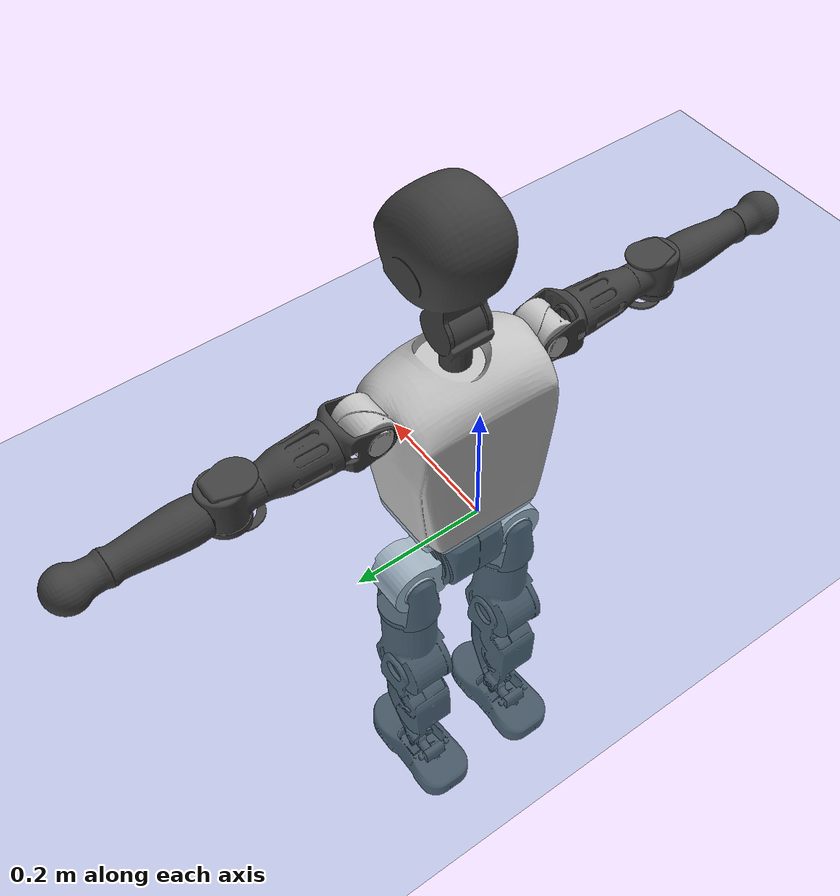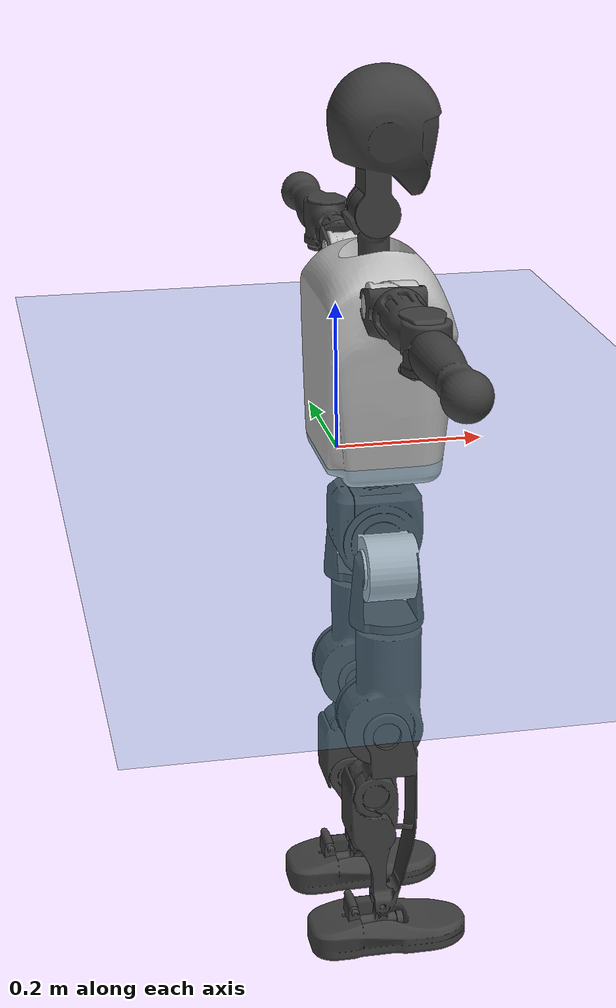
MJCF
<mujoco model="T1">
  <compiler angle="radian" assetdir="assets" balanceinertia="true" inertiafromgeom="false"/>

  <option timestep="0.005" density="1.2" viscosity="2e-05"/>

  <size nkey="1"/>

  <visual>
    <quality shadowsize="8192"/>
    <map shadowclip="0.5"/>
  </visual>

  <default>
    <default class="/">
      <joint armature="0.01" damping="0.01" frictionloss="0.1"/>
      <geom contype="0" conaffinity="0" group="1" solref="-1000 -80"/>
      <site size="0.01 0.005 0.005" group="5"/>
      <general forcelimited="true" biastype="affine" gainprm="25" biasprm="0 -25 -0.6"/>
      <default class="t1">
        <geom rgba="0.25 0.25 0.25 1"/>
        <default class="visual">
          <geom type="mesh" group="2"/>
        </default>
        <default class="collision">
          <geom group="3"/>
        </default>
        <default class="foot">
          <geom size="0.1115 0.05 0.015" type="box" condim="6" group="4" priority="1" solimp="0.015 1 0.015"/>
        </default>
        <default class="reward_collision_sphere">
          <geom group="5" rgba="1 0 0 1"/>
        </default>
      </default>
    </default>
  </default>

  <asset>
    <texture type="skybox" colorspace="auto" name="//unnamed_texture_0" builtin="gradient" rgb1="0.95 0.95 0.95" rgb2="0.95 0.95 0.95" width="100" height="600"/>
    <texture type="2d" colorspace="auto" name="texplane" builtin="checker" rgb1="0.345 0.575 0.748" rgb2="0.345 0.575 0.748" markrgb="1 1 1" width="512" height="512"/>
    <material name="MatPlane" class="/" texture="texplane" texuniform="true" texrepeat="2 2" specular="0.9"/>
    <mesh name="Trunk" class="/" file="Trunk.stl"/>
    <mesh name="H1" class="/" file="H1.stl"/>
    <mesh name="H2" class="/" file="H2.stl"/>
    <mesh name="AL1" class="/" file="AL1.stl"/>
    <mesh name="AL2" class="/" file="AL2.stl"/>
    <mesh name="AL3" class="/" file="AL3.stl"/>
    <mesh name="left_hand_link" class="/" file="left_hand_link.stl"/>
    <mesh name="AR1" class="/" file="AR1.stl"/>
    <mesh name="AR2" class="/" file="AR2.stl"/>
    <mesh name="AR3" class="/" file="AR3.stl"/>
    <mesh name="right_hand_link" class="/" file="right_hand_link.stl"/>
    <mesh name="Waist" class="/" file="Waist.stl"/>
    <mesh name="Hip_Pitch_Left" class="/" file="Hip_Pitch_Left.stl"/>
    <mesh name="Hip_Roll_Left" class="/" file="Hip_Roll_Left.stl"/>
    <mesh name="Hip_Yaw_Left" class="/" file="Hip_Yaw_Left.stl"/>
    <mesh name="Shank_Left" class="/" file="Shank_Left.stl"/>
    <mesh name="Ankle_Cross_Left" class="/" file="Ankle_Cross_Left.stl"/>
    <mesh name="left_foot_link" class="/" file="left_foot_link.stl"/>
    <mesh name="Hip_Pitch_Right" class="/" file="Hip_Pitch_Right.stl"/>
    <mesh name="Hip_Roll_Right" class="/" file="Hip_Roll_Right.stl"/>
    <mesh name="Hip_Yaw_Right" class="/" file="Hip_Yaw_Right.stl"/>
    <mesh name="Shank_Right" class="/" file="Shank_Right.stl"/>
    <mesh name="Ankle_Cross_Right" class="/" file="Ankle_Cross_Right.stl"/>
    <mesh name="right_foot_link" class="/" file="right_foot_link.stl"/>
  </asset>

  <worldbody>
    <geom name="floor" class="/" size="100 100 0.125" type="plane" group="0" material="MatPlane"/>
    <light name="toplight_shadow" class="/" pos="0 0 5" dir="0.0990148 0.0990148 -0.990148" type="directional" ambient="0.04 0.04 0.04" diffuse="0.55 0.55 0.55" specular="0.12 0.12 0.12"/>
    <light name="toplight_fill" class="/" pos="0 0 5" dir="0.0990148 0.0990148 -0.990148" type="directional" castshadow="false" ambient="0.04 0.04 0.04" diffuse="0.3 0.3 0.3" specular="0.08 0.08 0.08"/>
    <body name="trunk" childclass="t1" pos="0.00056994 0.000442019 -0.000888235" quat="1 -6.96058e-05 0.000265817 0.000366502">
      <inertial pos="0.0450321 -0.000167575 0.110876" quat="0.999948 0.00153962 -0.00997353 -0.00157096" mass="8.97556" diaginertia="0.0348502 0.0372814 0.0745007"/>
      <joint name="//unnamed_joint_0" type="free" armature="0" damping="0" frictionloss="0"/>
      <geom name="//unnamed_geom_1" class="visual" rgba="0.76 0.76 0.76 1" mesh="Trunk"/>
      <geom name="//unnamed_geom_2" class="collision" size="0.0687677 0.0916903 0.137535" pos="0.0494685 0 0.127357" type="box"/>
      <geom name="//unnamed_geom_3" class="reward_collision_sphere" size="0.105444" pos="0.0494685 0 0.106131"/>
      <geom name="//unnamed_geom_4" class="reward_collision_sphere" size="0.0137535" pos="0.0494685 0.0735186 0"/>
      <geom name="//unnamed_geom_5" class="reward_collision_sphere" size="0.0137535" pos="0.0494685 -0.0735186 0"/>
      <geom name="//unnamed_geom_6" class="reward_collision_sphere" size="0.0137535" pos="0.0494685 0.092547 0.191035"/>
      <geom name="//unnamed_geom_7" class="reward_collision_sphere" size="0.0137535" pos="0.0494685 -0.092547 0.191035"/>
      <site name="imu" pos="0.00445857 -0.000417155 -0.00142897" size="0.00916903"/>
      <camera name="track" pos="0 -1.72985 0" quat="0.707107 0.707107 0 0" mode="trackcom"/>
      <camera name="ego_camera" pos="0.100586 0 0.445749" quat="-0.5 -0.5 0.5 0.5"/>
      <body name="H1" pos="0.0512525 -0.000689009 0.257385" quat="1 -0.000238028 -0.000346419 0.00017969">
        <inertial pos="-0.00180088 -0.00165552 0.060011" quat="0.765183 -0.00901848 0.00340044 0.64374" mass="0.345117" diaginertia="9.30821e-05 0.000107716 0.000205325"/>
        <joint name="AAHead_yaw" pos="0 0 0" axis="0.000174574 0.000557308 1" range="-1.55285 1.58041" armature="0.00878028" damping="0.00790463" frictionloss="0.0951433"/>
        <geom name="//unnamed_geom_8" class="visual" mesh="H1"/>
        <body name="H2" pos="-0.000907078 -0.000684186 0.0654276" quat="1 1.25951e-05 -6.39274e-05 -2.9826e-05">
          <inertial pos="0.00567247 -4.79041e-05 0.104608" quat="0.988664 0.103745 -0.0750137 -0.0784421" mass="0.48978" diaginertia="0.000777861 0.000926637 0.00233349"/>
          <joint name="Head_pitch" pos="0 0 0" axis="-0.00196647 -0.999998 -0.000460603" range="-1.23118 0.333405" armature="0.00940769" damping="0.0056168" frictionloss="0.0935352"/>
          <geom name="//unnamed_geom_9" class="visual" mesh="H2"/>
          <geom name="//unnamed_geom_10" class="collision" size="0.0733522" pos="0.00824475 0 0.116744"/>
          <geom name="//unnamed_geom_11" class="reward_collision_sphere" size="0.0825212" pos="0.0164895 0 0.106131"/>
        </body>
      </body>
      <body name="AL1" pos="0.0481743 0.0931803 0.233033" quat="1 -1.74893e-05 0.000296012 -8.00279e-05">
        <inertial pos="-0.000397273 0.0389328 -0.000750894" quat="0.504763 0.495235 -0.505419 0.494478" mass="0.414588" diaginertia="0.000529844 0.000636346 0.000397688"/>
        <joint name="Left_Shoulder_Pitch" pos="0 0 0" axis="-0.000827083 0.999998 -0.00163988" range="-3.30909 1.22992" armature="0.00903199" damping="0.00486029" frictionloss="0.0931719"/>
        <geom name="//unnamed_geom_12" class="visual" rgba="0.76 0.76 0.76 1" mesh="AL1"/>
        <body name="AL2" pos="0.000665141 0.0417468 0.000585255" quat="1 -0.000223428 0.000426758 -0.000274709">
          <inertial pos="0.00294059 0.0317083 -0.000175916" quat="0.488086 0.511699 -0.488068 0.511592" mass="0.124182" diaginertia="0.000152992 0.000168778 0.000239099"/>
          <joint name="Left_Shoulder_Roll" pos="0 0 0" axis="-1 0.000663928 0.000605876" range="-1.56863 1.73614" armature="0.00942835" damping="0.00252462" frictionloss="0.0923573"/>
          <geom name="//unnamed_geom_13" class="visual" mesh="AL2"/>
          <body name="AL3" pos="0.00017978 0.0536716 -0.000268312" quat="1 9.63624e-05 2.45733e-05 -2.69035e-05">
            <inertial pos="-0.000147842 0.0740667 0.000137085" quat="0.704209 0.709985 0.00334729 7.82043e-06" mass="0.805815" diaginertia="0.00495393 0.00624903 0.000836403"/>
            <joint name="Left_Elbow_Pitch" pos="0 0 0" axis="-0.00250265 -0.999996 0.00140352" range="-2.25215 2.25478" armature="0.00932642" damping="0.00311623" frictionloss="0.0888392"/>
            <geom name="//unnamed_geom_14" class="visual" mesh="AL3"/>
            <geom name="//unnamed_geom_15" class="collision" size="0.0275071 0.0687677" pos="0 0.0432462 0" quat="0.707105 0.707108 0 0" type="cylinder"/>
            <geom name="//unnamed_geom_16" class="reward_collision_sphere" size="0.0330085"/>
            <body name="left_hand_link" pos="-0.000375486 0.127733 0.000232096" quat="1 -0.000162852 -0.000254495 -0.000343973">
              <inertial pos="-6.88104e-05 0.0949642 0.000822382" quat="0.707689 0.706523 0.000280917 0.00109026" mass="0.249116" diaginertia="0.00307497 0.00390981 0.000290728"/>
              <joint name="Left_Elbow_Yaw" pos="0 0 0" axis="0.000447322 0.00197861 0.999998" range="-2.44246 0.00117295" armature="0.00914355" damping="0.010812" frictionloss="0.0874704"/>
              <geom name="//unnamed_geom_17" class="visual" mesh="left_hand_link"/>
              <geom name="//unnamed_geom_18" class="collision" size="0.0275071 0.080229" pos="0 0.11244 0" quat="0.707105 0.707108 0 0" type="cylinder"/>
              <geom name="//unnamed_geom_19" class="reward_collision_sphere" size="0.0458451"/>
              <geom name="//unnamed_geom_20" class="reward_collision_sphere" size="0.0320916" pos="0 0.0951417 0"/>
              <geom name="//unnamed_geom_21" class="reward_collision_sphere" size="0.0320916" pos="0 0.185959 0"/>
            </body>
          </body>
        </body>
      </body>
      <body name="AR1" pos="0.0465524 -0.0917197 0.23226" quat="1 -7.82965e-05 0.000631006 0.000227697">
        <inertial pos="-0.00137809 -0.0393534 0.000197801" quat="0.50439 0.49537 -0.503442 0.496735" mass="0.408356" diaginertia="0.000527326 0.000626996 0.000393354"/>
        <joint name="Right_Shoulder_Pitch" pos="0 0 0" axis="-0.00148018 -0.999999 -0.000448447" stiffness="0.00092625" range="-1.22909 3.30882" armature="0.0096075" damping="0.00540939" frictionloss="0.0938067"/>
        <geom name="//unnamed_geom_22" class="visual" rgba="0.76 0.76 0.76 1" mesh="AR1"/>
        <body name="AR2" pos="-0.00110789 -0.0402895 0.000154011" quat="1 -1.12646e-06 4.79628e-06 -3.53394e-06">
          <inertial pos="0.0028317 -0.0328679 2.32232e-05" quat="0.512061 0.490785 -0.512083 0.484453" mass="0.122232" diaginertia="0.000154639 0.000166515 0.000238737"/>
          <joint name="Right_Shoulder_Roll" pos="0 0 0" axis="-0.999989 -0.0025139 0.00401008" range="-1.74212 1.57299" armature="0.00915676" damping="0.00494958" frictionloss="0.0913298"/>
          <geom name="//unnamed_geom_23" class="visual" mesh="AR2"/>
          <body name="AR3" pos="-0.00109905 -0.0526234 0.000948007" quat="1 0.000138142 7.08869e-05 -8.4348e-05">
            <inertial pos="-0.000803591 -0.0729962 -0.000295231" quat="0.707567 0.706646 -0.00042374 0.000371112" mass="0.781669" diaginertia="0.00488465 0.0061182 0.000824103"/>
            <joint name="Right_Elbow_Pitch" pos="0 0 0" axis="-3.29422e-05 0.999997 0.00229605" range="-2.26778 2.27204" armature="0.00932211" damping="0.0085674" frictionloss="0.0906874"/>
            <geom name="//unnamed_geom_24" class="visual" mesh="AR3"/>
            <geom name="//unnamed_geom_25" class="collision" size="0.0275071 0.0687677" pos="0 -0.0432462 0" quat="0.707105 0.707108 0 0" type="cylinder"/>
            <geom name="//unnamed_geom_26" class="reward_collision_sphere" size="0.0330085"/>
            <body name="right_hand_link" pos="-0.000314905 -0.127034 -0.000475021" quat="1 0.000303493 7.38691e-05 1.39086e-05">
              <inertial pos="-0.000890082 -0.0944387 0.000151501" quat="0.704691 0.709509 0.00177199 0.00223372" mass="0.255678" diaginertia="0.00309497 0.00393412 0.000285658"/>
              <joint name="Right_Elbow_Yaw" pos="0 0 0" axis="-0.00371505 -0.00368155 0.999986" range="-0.00586317 2.45287" armature="0.00893179" damping="0.0087497" frictionloss="0.0923529"/>
              <geom name="//unnamed_geom_27" class="visual" mesh="right_hand_link"/>
              <geom name="//unnamed_geom_28" class="collision" size="0.0275071 0.080229" pos="0 -0.11244 0" quat="0.707105 0.707108 0 0" type="cylinder"/>
              <geom name="//unnamed_geom_29" class="reward_collision_sphere" size="0.0458451"/>
              <geom name="//unnamed_geom_30" class="reward_collision_sphere" size="0.0320916" pos="0 -0.0951417 0"/>
              <geom name="//unnamed_geom_31" class="reward_collision_sphere" size="0.0320916" pos="0 -0.185959 0"/>
            </body>
          </body>
        </body>
      </body>
      <body name="Waist" pos="0.0511877 -0.000982073 -0.12192" quat="1 9.29631e-05 0.000399212 -0.000190931">
        <inertial pos="0.00199561 -0.000671825 0.00690596" quat="0.983536 0.00472826 -0.180635 0.00235565" mass="2.01315" diaginertia="0.0020568 0.00256793 0.00638639"/>
        <joint name="Waist" pos="0 0 0" axis="-0.000227 -0.00011699 1" range="-1.56857 1.57438" armature="0.00899055" damping="0.0119535" frictionloss="0.0927256"/>
        <geom name="//unnamed_geom_32" class="visual" mesh="Waist"/>
        <body name="Hip_Pitch_Left" pos="-0.000239832 0.0917722 0.000781756" quat="1 -3.99704e-05 -0.00010242 2.31357e-05">
          <inertial pos="0.00156974 -0.0073259 -0.0196057" quat="0.975361 0.219887 0.0176317 0.00305959" mass="0.779947" diaginertia="0.000686093 0.000708502 0.00167941"/>
          <joint name="Left_Hip_Pitch" pos="0 0 0" axis="0.000702513 1 8.76503e-05" stiffness="0.000904197" range="-1.80363 1.57504" armature="0.00919957" damping="0.0050547" frictionloss="0.0894342"/>
          <geom name="//unnamed_geom_33" class="visual" rgba="0.76 0.76 0.76 1" mesh="Hip_Pitch_Left"/>
          <body name="Hip_Roll_Left" pos="0.000118693 1.58396e-05 -0.0212875" quat="1 -0.000299753 0.000284969 0.000170475">
            <inertial pos="0.00197579 -0.000302236 -0.0569997" quat="0.706064 -0.00685115 -0.00264067 0.70811" mass="0.292214" diaginertia="0.000659988 0.000728023 0.000681798"/>
            <joint name="Left_Hip_Roll" pos="0 0 0" axis="-0.999994 0.00039831 -0.00344914" stiffness="0.00201276" range="-1.56901 0.18875" armature="0.00905624" damping="0.0110449" frictionloss="0.0951586"/>
            <geom name="//unnamed_geom_34" class="visual" mesh="Hip_Roll_Left"/>
            <geom name="//unnamed_geom_35" class="reward_collision_sphere" size="0.0504296"/>
            <body name="Hip_Yaw_Left" pos="0.00182593 -0.000694471 -0.0879156" quat="1 1.7098e-05 8.90861e-06 -0.000122484">
              <inertial pos="-0.00559644 -0.000584427 -0.0950939" quat="0.694937 -0.0347022 -0.0312022 0.717555" mass="1.69739" diaginertia="0.00990106 0.0124504 0.00354199"/>
              <joint name="Left_Hip_Yaw" pos="0 0 0" axis="-0.0014127 -0.000547493 -0.999999" stiffness="0.00222582" range="-1.02093 1.01683" armature="0.00923598" damping="0.00812072" frictionloss="0.0916844"/>
              <geom name="//unnamed_geom_36" class="visual" mesh="Hip_Yaw_Left"/>
              <geom name="//unnamed_geom_37" class="collision" size="0.0458451 0.0733522" type="cylinder"/>
              <body name="Shank_Left" pos="-0.0116273 0.000372318 -0.142609" quat="1 2.4807e-05 0.000182931 1.63444e-05">
                <inertial pos="-0.00457631 -5.53835e-05 -0.131998" quat="0.997598 0.00293477 -0.0238202 0.0649751" mass="1.33923" diaginertia="0.0134212 0.0167233 0.00253853"/>
                <joint name="Left_Knee_Pitch" pos="0 0 0" axis="-0.000139065 1 -0.000233811" stiffness="0.000342504" range="-0.0190704 2.34247" armature="0.00908805" damping="0.00442088" frictionloss="0.0973988"/>
                <geom name="//unnamed_geom_38" class="visual" mesh="Shank_Left"/>
                <geom name="//unnamed_geom_39" class="collision" size="0.0458451 0.0687677" pos="0 0 -0.127357" type="cylinder"/>
                <geom name="//unnamed_geom_40" class="reward_collision_sphere" size="0.0595987"/>
                <body name="Ankle_Cross_Left" pos="-0.000169166 0.000192926 -0.296529" quat="1 -7.914e-05 7.46083e-07 0.000121393">
                  <inertial pos="-0.00263064 0.000352154 -0.00942385" quat="0.441842 0.550845 0.55296 0.442244" mass="0.0560389" diaginertia="1.08232e-05 1.21209e-05 1.50071e-05"/>
                  <joint name="Left_Ankle_Pitch" pos="0 0 0" axis="0.00406437 0.999992 0.000192388" range="-0.861483 0.342727" armature="0.00918972" damping="0.00688156" frictionloss="0.0953318"/>
                  <geom name="//unnamed_geom_41" class="visual" mesh="Ankle_Cross_Left"/>
                  <body name="left_foot_link" pos="-0.000510004 -0.000951453 -0.0126654" quat="1 0.000118444 -0.000429351 7.73568e-05">
                    <inertial pos="7.57665e-05 8.68224e-05 -0.00916868" quat="0.000744967 0.619872 0.00134698 0.784702" mass="0.523493" diaginertia="0.00101908 0.00114251 0.00293702"/>
                    <joint name="Left_Ankle_Roll" pos="0 0 0" axis="-0.999997 0.00114151 0.00207082" range="-0.446476 0.45785" armature="0.00915007" damping="0.00995321" frictionloss="0.089967"/>
                    <geom name="//unnamed_geom_42" class="visual" mesh="left_foot_link"/>
                    <geom name="left_foot" class="foot" size="0.102082 0.0464845 0.0135049" pos="0.00824475 0 -0.0159196"/>
                    <geom name="//unnamed_geom_44" class="reward_collision_sphere" size="0.0476789" pos="0.00824475 0 -0.0159196"/>
                    <geom name="//unnamed_geom_45" class="reward_collision_sphere" size="0.0275071" pos="0.0783251 -0.0198933 -0.0159196"/>
                    <geom name="//unnamed_geom_46" class="reward_collision_sphere" size="0.0275071" pos="-0.0577133 -0.0198933 -0.0159196"/>
                    <site name="left_foot" class="foot" pos="0.00824475 0 -0.0159196" size="0.00916903"/>
                  </body>
                </body>
              </body>
            </body>
          </body>
        </body>
        <body name="Hip_Pitch_Right" pos="1.943e-05 -0.0911487 -0.000362414" quat="1 -2.99476e-05 0.00014337 1.43738e-05">
          <inertial pos="0.00134858 0.00646727 -0.0193089" quat="0.97317 -0.2296 0.0145621 -0.00358752" mass="0.780403" diaginertia="0.000682447 0.000699644 0.00165379"/>
          <joint name="Right_Hip_Pitch" pos="0 0 0" axis="0.000541836 -1 -0.000495923" range="-1.5731 1.7995" armature="0.00924702" damping="0.009051" frictionloss="0.0884179"/>
          <geom name="//unnamed_geom_47" class="visual" rgba="0.76 0.76 0.76 1" mesh="Hip_Pitch_Right"/>
          <body name="Hip_Roll_Right" pos="-0.000316236 -0.000529564 -0.0203969" quat="1 -3.22294e-05 0.000158233 -0.000188382">
            <inertial pos="0.00138098 0.000753973 -0.0564751" quat="0.70643 -0.010055 -0.00717327 0.707675" mass="0.297531" diaginertia="0.000666504 0.000737595 0.000700295"/>
            <joint name="Right_Hip_Roll" pos="0 0 0" axis="-0.999998 0.000631089 -0.00163565" stiffness="0.000105676" range="-0.183311 1.56001" armature="0.0087393" damping="0.00712062" frictionloss="0.0956825"/>
            <geom name="//unnamed_geom_48" class="visual" mesh="Hip_Roll_Right"/>
            <geom name="//unnamed_geom_49" class="reward_collision_sphere" size="0.0504296"/>
            <body name="Hip_Yaw_Right" pos="0.000706194 -1.99905e-05 -0.0873421" quat="1 -2.16289e-05 3.74712e-05 4.11945e-05">
              <inertial pos="-0.00592817 -0.000324496 -0.0941974" quat="0.714702 -0.0331097 -0.0316842 0.697927" mass="1.68425" diaginertia="0.00990231 0.012236 0.00350761"/>
              <joint name="Right_Hip_Yaw" pos="0 0 0" axis="0.00264679 -0.000396692 -0.999996" range="-1.0143 1.00203" armature="0.00881563" damping="0.0115454" frictionloss="0.089382"/>
              <geom name="//unnamed_geom_50" class="visual" mesh="Hip_Yaw_Right"/>
              <geom name="//unnamed_geom_51" class="collision" size="0.0458451 0.0733522" type="cylinder"/>
              <body name="Shank_Right" pos="-0.0107204 -0.000146039 -0.141715" quat="1 1.22643e-05 6.93384e-07 -1.27818e-05">
                <inertial pos="-0.00451558 0.00102043 -0.130358" quat="0.999246 -0.00393211 -0.023846 -0.0303822" mass="1.3935" diaginertia="0.0137291 0.0171596 0.00270244"/>
                <joint name="Right_Knee_Pitch" pos="0 0 0" axis="-0.0016105 -0.999995 0.00279472" range="-2.34071 -0.00427484" armature="0.00929653" damping="0.00831602" frictionloss="0.0880622"/>
                <geom name="//unnamed_geom_52" class="visual" mesh="Shank_Right"/>
                <geom name="//unnamed_geom_53" class="collision" size="0.0458451 0.0687677" pos="0 0 -0.127357" type="cylinder"/>
                <geom name="//unnamed_geom_54" class="reward_collision_sphere" size="0.0595987"/>
                <body name="Ankle_Cross_Right" pos="-0.000626175 -0.000932282 -0.297108" quat="1 -0.00013868 -7.90382e-05 -5.87833e-05">
                  <inertial pos="-0.00308472 -0.000589688 -0.00852203" quat="0.439822 0.5505 0.553638 0.443837" mass="0.0566481" diaginertia="1.09504e-05 1.24465e-05 1.54373e-05"/>
                  <joint name="Right_Ankle_Pitch" pos="0 0 0" axis="-0.00468046 -0.999982 0.0038019" stiffness="0.00144868" range="-0.344674 0.862881" armature="0.00935589" damping="0.00710189" frictionloss="0.0916643"/>
                  <geom name="//unnamed_geom_55" class="visual" mesh="Ankle_Cross_Right"/>
                  <body name="right_foot_link" pos="-9.93289e-05 -0.000538768 -0.0134177" quat="1 -2.43625e-05 -7.17469e-05 -0.00012346">
                    <inertial pos="0.00066227 -0.000127312 -0.0105416" quat="-0.00101675 0.622265 -0.00193724 0.782803" mass="0.526952" diaginertia="0.00104071 0.00115706 0.00297299"/>
                    <joint name="Right_Ankle_Roll" pos="0 0 0" axis="-1 0.00032103 0.000441049" range="-0.44077 0.447077" armature="0.00903349" damping="0.00835923" frictionloss="0.0898695"/>
                    <geom name="//unnamed_geom_56" class="visual" mesh="right_foot_link"/>
                    <geom name="right_foot" class="foot" size="0.0997397 0.0459839 0.0143242" pos="0.00824475 0 -0.0159196"/>
                    <geom name="//unnamed_geom_58" class="reward_collision_sphere" size="0.0366761"/>
                    <geom name="//unnamed_geom_59" class="reward_collision_sphere" size="0.0275071" pos="0.00824475 0 -0.0159196"/>
                    <geom name="//unnamed_geom_60" class="reward_collision_sphere" size="0.0275071" pos="0.0783251 0.0198933 -0.0159196"/>
                    <geom name="//unnamed_geom_61" class="reward_collision_sphere" size="0.0275071" pos="-0.0577133 0.0198933 -0.0159196"/>
                    <site name="right_foot" class="foot" pos="0.00824475 0 -0.0159196" size="0.00916903"/>
                  </body>
                </body>
              </body>
            </body>
          </body>
        </body>
      </body>
    </body>
  </worldbody>

  <contact>
    <pair class="/" geom1="floor" geom2="left_foot" name="//unnamed_contact_0"/>
    <pair class="/" geom1="floor" geom2="right_foot" name="//unnamed_contact_1"/>
  </contact>

  <actuator>
    <general name="AAHead_yaw" class="/" joint="AAHead_yaw" forcerange="-6.42668 6.42668" gainprm="22.8565" biasprm="0 -22.8565 -0.546904"/>
    <general name="Head_pitch" class="/" joint="Head_pitch" forcerange="-6.32274 6.32274" gainprm="22.8565" biasprm="0 -22.8565 -0.546904"/>
    <general name="Left_Shoulder_Pitch" class="/" joint="Left_Shoulder_Pitch" forcerange="-16.442 16.442" gainprm="22.8565" biasprm="0 -22.8565 -0.546904"/>
    <general name="Left_Shoulder_Roll" class="/" joint="Left_Shoulder_Roll" forcerange="-16.2526 16.2526" gainprm="22.8565" biasprm="0 -22.8565 -0.546904"/>
    <general name="Left_Elbow_Pitch" class="/" joint="Left_Elbow_Pitch" forcerange="-16.2505 16.2505" gainprm="22.8565" biasprm="0 -22.8565 -0.546904"/>
    <general name="Left_Elbow_Yaw" class="/" joint="Left_Elbow_Yaw" forcerange="-17.1798 17.1798" gainprm="22.8565" biasprm="0 -22.8565 -0.546904"/>
    <general name="Right_Shoulder_Pitch" class="/" joint="Right_Shoulder_Pitch" forcerange="-16.6533 16.6533" gainprm="22.8565" biasprm="0 -22.8565 -0.546904"/>
    <general name="Right_Shoulder_Roll" class="/" joint="Right_Shoulder_Roll" forcerange="-16.1809 16.1809" gainprm="22.8565" biasprm="0 -22.8565 -0.546904"/>
    <general name="Right_Elbow_Pitch" class="/" joint="Right_Elbow_Pitch" forcerange="-15.9959 15.9959" gainprm="22.8565" biasprm="0 -22.8565 -0.546904"/>
    <general name="Right_Elbow_Yaw" class="/" joint="Right_Elbow_Yaw" forcerange="-16.7786 16.7786" gainprm="22.8565" biasprm="0 -22.8565 -0.546904"/>
    <general name="Waist" class="/" joint="Waist" forcerange="-27.6776 27.6776" gainprm="22.8565" biasprm="0 -22.8565 -0.546904"/>
    <general name="Left_Hip_Pitch" class="/" joint="Left_Hip_Pitch" forcerange="-39.8003 39.8003" gainprm="22.8565" biasprm="0 -22.8565 -0.546904"/>
    <general name="Left_Hip_Roll" class="/" joint="Left_Hip_Roll" forcerange="-27.1572 27.1572" gainprm="22.8565" biasprm="0 -22.8565 -0.546904"/>
    <general name="Left_Hip_Yaw" class="/" joint="Left_Hip_Yaw" forcerange="-27.4297 27.4297" gainprm="22.8565" biasprm="0 -22.8565 -0.546904"/>
    <general name="Left_Knee_Pitch" class="/" joint="Left_Knee_Pitch" forcerange="-54.827 54.827" gainprm="22.8565" biasprm="0 -22.8565 -0.546904"/>
    <general name="Left_Ankle_Pitch" class="/" joint="Left_Ankle_Pitch" forcerange="-18.4774 18.4774" gainprm="22.8565" biasprm="0 -22.8565 -0.546904"/>
    <general name="Left_Ankle_Roll" class="/" joint="Left_Ankle_Roll" forcerange="-13.7445 13.7445" gainprm="22.8565" biasprm="0 -22.8565 -0.546904"/>
    <general name="Right_Hip_Pitch" class="/" joint="Right_Hip_Pitch" forcerange="-41.7447 41.7447" gainprm="22.8565" biasprm="0 -22.8565 -0.546904"/>
    <general name="Right_Hip_Roll" class="/" joint="Right_Hip_Roll" forcerange="-27.5717 27.5717" gainprm="22.8565" biasprm="0 -22.8565 -0.546904"/>
    <general name="Right_Hip_Yaw" class="/" joint="Right_Hip_Yaw" forcerange="-27.2066 27.2066" gainprm="22.8565" biasprm="0 -22.8565 -0.546904"/>
    <general name="Right_Knee_Pitch" class="/" joint="Right_Knee_Pitch" forcerange="-56.6998 56.6998" gainprm="22.8565" biasprm="0 -22.8565 -0.546904"/>
    <general name="Right_Ankle_Pitch" class="/" joint="Right_Ankle_Pitch" forcerange="-18.7476 18.7476" gainprm="22.8565" biasprm="0 -22.8565 -0.546904"/>
    <general name="Right_Ankle_Roll" class="/" joint="Right_Ankle_Roll" forcerange="-13.2866 13.2866" gainprm="22.8565" biasprm="0 -22.8565 -0.546904"/>
  </actuator>

  <sensor>
    <gyro site="imu" name="imu_angular_velocity"/>
    <velocimeter site="imu" name="imu_linear_velocity"/>
    <framelinvel objtype="site" objname="left_foot" name="left_foot_global_linear_velocity"/>
    <framelinvel objtype="site" objname="right_foot" name="right_foot_global_linear_velocity"/>
  </sensor>

  <keyframe>
    <key name="home" qpos="0 0 0.6385 1 0 0 0 0 0 0 1.4 0 -0.4 0 -1.4 0 0.4 0 -0.4 0 0 0.8 -0.4 0 0.4 0 0 -0.8 0.4 0"/>
  </keyframe>
</mujoco>
